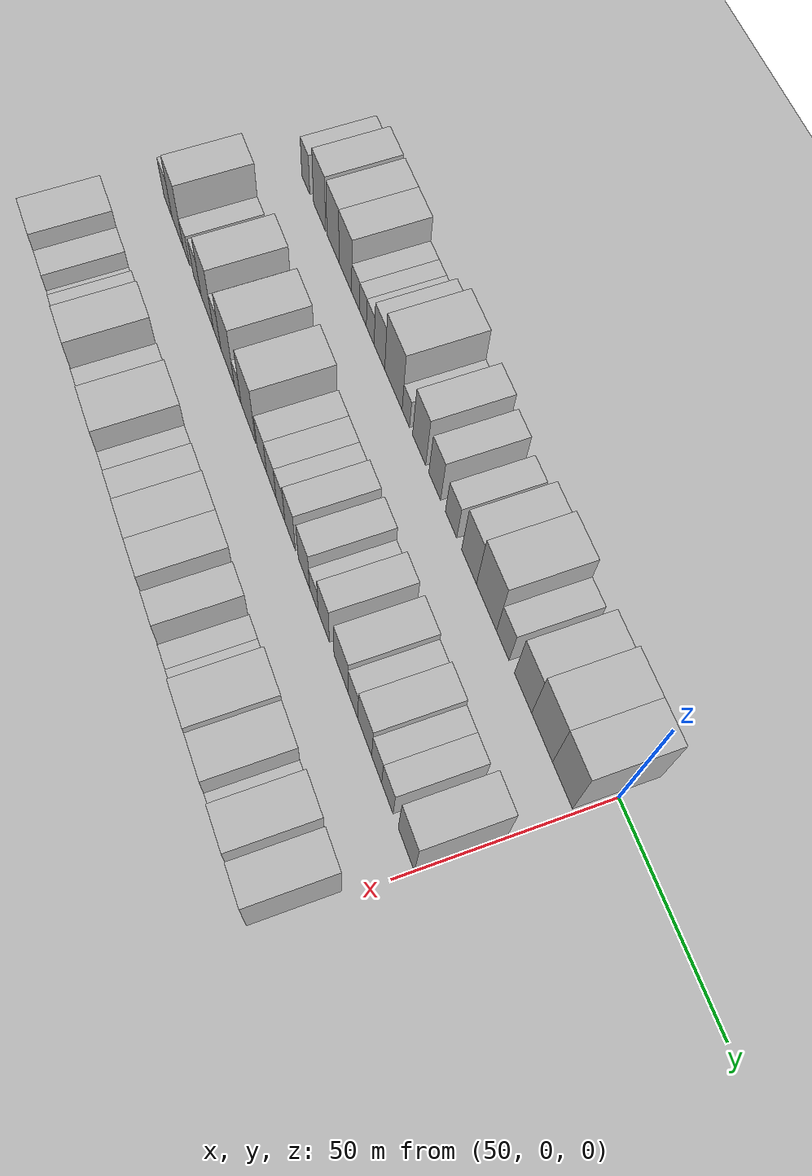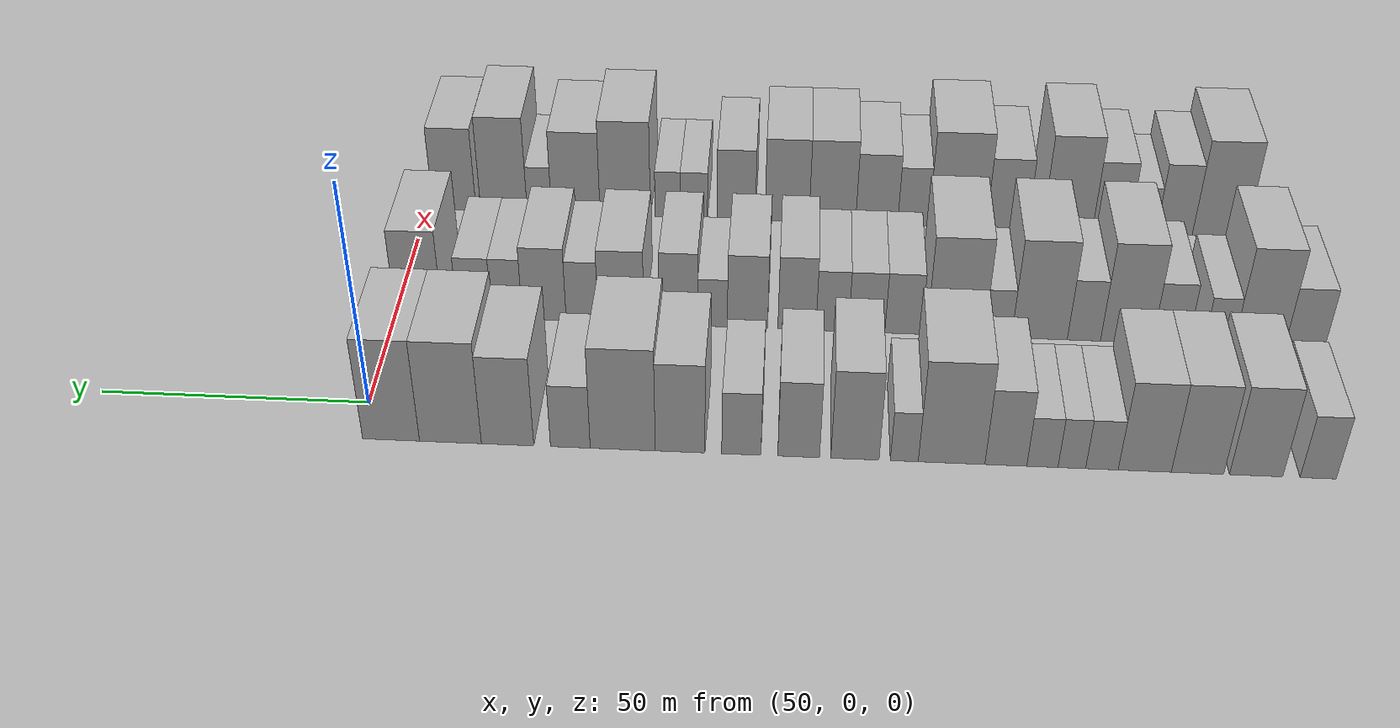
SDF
<sdf version="1.6">
 <world name="default">
  <include><name>ground_plane_1</name><uri>model://HANNAS_ground_plane</uri></include>
  <include>
   <name>ground_plane_2</name>
   <uri>model://HANNAS_ground_plane</uri>
   <pose>100 0 0  0 0 0</pose>
  </include>
  <model name="building_21">
   <static>1</static>
   <pose>50.0000 -170.3118 0 0.000000 0.000000 0.000000</pose>
   <link name="link">
    <pose>0 0 7.50 0 0 0</pose>
    <collision name="collision"><geometry><box><size>20.0000 6.2473 15.0000</size></box></geometry></collision>
    <visual name="visual">
     <cast_shadows>0</cast_shadows>
     <geometry><box><size>20.0000 6.2473 15.0000</size></box></geometry>
     <material>
      <script>
       <uri>model://HANNAS_wall/materials/scripts</uri>
       <uri>model://HANNAS_wall/materials/textures</uri>
       <name>vrc/HANNAS_wall</name>
      </script>
     </material>
    </visual>
   </link>
  </model>
  <model name="building_22">
   <static>1</static>
   <pose>50.0000 -159.5734 0 0.000000 0.000000 0.000000</pose>
   <link name="link">
    <pose>0 0 10.50 0 0 0</pose>
    <collision name="collision"><geometry><box><size>20.0000 9.2295 21.0000</size></box></geometry></collision>
    <visual name="visual">
     <cast_shadows>0</cast_shadows>
     <geometry><box><size>20.0000 9.2295 21.0000</size></box></geometry>
     <material>
      <script>
       <uri>model://HANNAS_wall/materials/scripts</uri>
       <uri>model://HANNAS_wall/materials/textures</uri>
       <name>vrc/HANNAS_wall</name>
      </script>
     </material>
    </visual>
   </link>
  </model>
  <model name="building_23">
   <static>1</static>
   <pose>50.0000 -149.4023 0 0.000000 0.000000 0.000000</pose>
   <link name="link">
    <pose>0 0 10.50 0 0 0</pose>
    <collision name="collision"><geometry><box><size>20.0000 9.1128 21.0000</size></box></geometry></collision>
    <visual name="visual">
     <cast_shadows>0</cast_shadows>
     <geometry><box><size>20.0000 9.1128 21.0000</size></box></geometry>
     <material>
      <script>
       <uri>model://HANNAS_wall/materials/scripts</uri>
       <uri>model://HANNAS_wall/materials/textures</uri>
       <name>vrc/HANNAS_wall</name>
      </script>
     </material>
    </visual>
   </link>
  </model>
  <model name="building_24">
   <static>1</static>
   <pose>50.0000 -140.2071 0 0.000000 0.000000 0.000000</pose>
   <link name="link">
    <pose>0 0 10.50 0 0 0</pose>
    <collision name="collision"><geometry><box><size>20.0000 9.2776 21.0000</size></box></geometry></collision>
    <visual name="visual">
     <cast_shadows>0</cast_shadows>
     <geometry><box><size>20.0000 9.2776 21.0000</size></box></geometry>
     <material>
      <script>
       <uri>model://HANNAS_wall/materials/scripts</uri>
       <uri>model://HANNAS_wall/materials/textures</uri>
       <name>vrc/HANNAS_wall</name>
      </script>
     </material>
    </visual>
   </link>
  </model>
  <model name="building_25">
   <static>1</static>
   <pose>50.0000 -132.7250 0 0.000000 0.000000 0.000000</pose>
   <link name="link">
    <pose>0 0 6.00 0 0 0</pose>
    <collision name="collision"><geometry><box><size>20.0000 5.6866 12.0000</size></box></geometry></collision>
    <visual name="visual">
     <cast_shadows>0</cast_shadows>
     <geometry><box><size>20.0000 5.6866 12.0000</size></box></geometry>
     <material>
      <script>
       <uri>model://HANNAS_wall/materials/scripts</uri>
       <uri>model://HANNAS_wall/materials/textures</uri>
       <name>vrc/HANNAS_wall</name>
      </script>
     </material>
    </visual>
   </link>
  </model>
  <model name="building_26">
   <static>1</static>
   <pose>50.0000 -127.4625 0 0.000000 0.000000 0.000000</pose>
   <link name="link">
    <pose>0 0 6.00 0 0 0</pose>
    <collision name="collision"><geometry><box><size>20.0000 4.8385 12.0000</size></box></geometry></collision>
    <visual name="visual">
     <cast_shadows>0</cast_shadows>
     <geometry><box><size>20.0000 4.8385 12.0000</size></box></geometry>
     <material>
      <script>
       <uri>model://HANNAS_wall/materials/scripts</uri>
       <uri>model://HANNAS_wall/materials/textures</uri>
       <name>vrc/HANNAS_wall</name>
      </script>
     </material>
    </visual>
   </link>
  </model>
  <model name="building_27">
   <static>1</static>
   <pose>50.0000 -122.3108 0 0.000000 0.000000 0.000000</pose>
   <link name="link">
    <pose>0 0 6.00 0 0 0</pose>
    <collision name="collision"><geometry><box><size>20.0000 5.4649 12.0000</size></box></geometry></collision>
    <visual name="visual">
     <cast_shadows>0</cast_shadows>
     <geometry><box><size>20.0000 5.4649 12.0000</size></box></geometry>
     <material>
      <script>
       <uri>model://HANNAS_wall/materials/scripts</uri>
       <uri>model://HANNAS_wall/materials/textures</uri>
       <name>vrc/HANNAS_wall</name>
      </script>
     </material>
    </visual>
   </link>
  </model>
  <model name="building_28">
   <static>1</static>
   <pose>50.0000 -115.8985 0 0.000000 0.000000 0.000000</pose>
   <link name="link">
    <pose>0 0 9.00 0 0 0</pose>
    <collision name="collision"><geometry><box><size>20.0000 7.3597 18.0000</size></box></geometry></collision>
    <visual name="visual">
     <cast_shadows>0</cast_shadows>
     <geometry><box><size>20.0000 7.3597 18.0000</size></box></geometry>
     <material>
      <script>
       <uri>model://HANNAS_wall/materials/scripts</uri>
       <uri>model://HANNAS_wall/materials/textures</uri>
       <name>vrc/HANNAS_wall</name>
      </script>
     </material>
    </visual>
   </link>
  </model>
  <model name="building_29">
   <static>1</static>
   <pose>50.0000 -106.3487 0 0.000000 0.000000 0.000000</pose>
   <link name="link">
    <pose>0 0 12.00 0 0 0</pose>
    <collision name="collision"><geometry><box><size>20.0000 11.7398 24.0000</size></box></geometry></collision>
    <visual name="visual">
     <cast_shadows>0</cast_shadows>
     <geometry><box><size>20.0000 11.7398 24.0000</size></box></geometry>
     <material>
      <script>
       <uri>model://HANNAS_wall/materials/scripts</uri>
       <uri>model://HANNAS_wall/materials/textures</uri>
       <name>vrc/HANNAS_wall</name>
      </script>
     </material>
    </visual>
   </link>
  </model>
  <model name="building_30">
   <static>1</static>
   <pose>50.0000 -98.0165 0 0.000000 0.000000 0.000000</pose>
   <link name="link">
    <pose>0 0 6.00 0 0 0</pose>
    <collision name="collision"><geometry><box><size>20.0000 4.9245 12.0000</size></box></geometry></collision>
    <visual name="visual">
     <cast_shadows>0</cast_shadows>
     <geometry><box><size>20.0000 4.9245 12.0000</size></box></geometry>
     <material>
      <script>
       <uri>model://HANNAS_wall/materials/scripts</uri>
       <uri>model://HANNAS_wall/materials/textures</uri>
       <name>vrc/HANNAS_wall</name>
      </script>
     </material>
    </visual>
   </link>
  </model>
  <model name="building_31">
   <static>1</static>
   <pose>50.0000 -89.2858 0 0.000000 0.000000 0.000000</pose>
   <link name="link">
    <pose>0 0 10.50 0 0 0</pose>
    <collision name="collision"><geometry><box><size>20.0000 8.5370 21.0000</size></box></geometry></collision>
    <visual name="visual">
     <cast_shadows>0</cast_shadows>
     <geometry><box><size>20.0000 8.5370 21.0000</size></box></geometry>
     <material>
      <script>
       <uri>model://HANNAS_wall/materials/scripts</uri>
       <uri>model://HANNAS_wall/materials/textures</uri>
       <name>vrc/HANNAS_wall</name>
      </script>
     </material>
    </visual>
   </link>
  </model>
  <model name="building_32">
   <static>1</static>
   <pose>50.0000 -79.3101 0 0.000000 0.000000 0.000000</pose>
   <link name="link">
    <pose>0 0 9.00 0 0 0</pose>
    <collision name="collision"><geometry><box><size>20.0000 7.4142 18.0000</size></box></geometry></collision>
    <visual name="visual">
     <cast_shadows>0</cast_shadows>
     <geometry><box><size>20.0000 7.4142 18.0000</size></box></geometry>
     <material>
      <script>
       <uri>model://HANNAS_wall/materials/scripts</uri>
       <uri>model://HANNAS_wall/materials/textures</uri>
       <name>vrc/HANNAS_wall</name>
      </script>
     </material>
    </visual>
   </link>
  </model>
  <model name="building_33">
   <static>1</static>
   <pose>50.0000 -69.1158 0 0.000000 0.000000 0.000000</pose>
   <link name="link">
    <pose>0 0 7.50 0 0 0</pose>
    <collision name="collision"><geometry><box><size>20.0000 6.9746 15.0000</size></box></geometry></collision>
    <visual name="visual">
     <cast_shadows>0</cast_shadows>
     <geometry><box><size>20.0000 6.9746 15.0000</size></box></geometry>
     <material>
      <script>
       <uri>model://HANNAS_wall/materials/scripts</uri>
       <uri>model://HANNAS_wall/materials/textures</uri>
       <name>vrc/HANNAS_wall</name>
      </script>
     </material>
    </visual>
   </link>
  </model>
  <model name="building_34">
   <static>1</static>
   <pose>50.0000 -58.2032 0 0.000000 0.000000 0.000000</pose>
   <link name="link">
    <pose>0 0 10.50 0 0 0</pose>
    <collision name="collision"><geometry><box><size>20.0000 8.8505 21.0000</size></box></geometry></collision>
    <visual name="visual">
     <cast_shadows>0</cast_shadows>
     <geometry><box><size>20.0000 8.8505 21.0000</size></box></geometry>
     <material>
      <script>
       <uri>model://HANNAS_wall/materials/scripts</uri>
       <uri>model://HANNAS_wall/materials/textures</uri>
       <name>vrc/HANNAS_wall</name>
      </script>
     </material>
    </visual>
   </link>
  </model>
  <model name="building_35">
   <static>1</static>
   <pose>50.0000 -47.9410 0 0.000000 0.000000 0.000000</pose>
   <link name="link">
    <pose>0 0 12.00 0 0 0</pose>
    <collision name="collision"><geometry><box><size>20.0000 11.6740 24.0000</size></box></geometry></collision>
    <visual name="visual">
     <cast_shadows>0</cast_shadows>
     <geometry><box><size>20.0000 11.6740 24.0000</size></box></geometry>
     <material>
      <script>
       <uri>model://HANNAS_wall/materials/scripts</uri>
       <uri>model://HANNAS_wall/materials/textures</uri>
       <name>vrc/HANNAS_wall</name>
      </script>
     </material>
    </visual>
   </link>
  </model>
  <model name="building_36">
   <static>1</static>
   <pose>50.0000 -38.5350 0 0.000000 0.000000 0.000000</pose>
   <link name="link">
    <pose>0 0 7.50 0 0 0</pose>
    <collision name="collision"><geometry><box><size>20.0000 7.1380 15.0000</size></box></geometry></collision>
    <visual name="visual">
     <cast_shadows>0</cast_shadows>
     <geometry><box><size>20.0000 7.1380 15.0000</size></box></geometry>
     <material>
      <script>
       <uri>model://HANNAS_wall/materials/scripts</uri>
       <uri>model://HANNAS_wall/materials/textures</uri>
       <name>vrc/HANNAS_wall</name>
      </script>
     </material>
    </visual>
   </link>
  </model>
  <model name="building_37">
   <static>1</static>
   <pose>50.0000 -27.2433 0 0.000000 0.000000 0.000000</pose>
   <link name="link">
    <pose>0 0 10.50 0 0 0</pose>
    <collision name="collision"><geometry><box><size>20.0000 9.4455 21.0000</size></box></geometry></collision>
    <visual name="visual">
     <cast_shadows>0</cast_shadows>
     <geometry><box><size>20.0000 9.4455 21.0000</size></box></geometry>
     <material>
      <script>
       <uri>model://HANNAS_wall/materials/scripts</uri>
       <uri>model://HANNAS_wall/materials/textures</uri>
       <name>vrc/HANNAS_wall</name>
      </script>
     </material>
    </visual>
   </link>
  </model>
  <model name="building_38">
   <static>1</static>
   <pose>50.0000 -16.9282 0 0.000000 0.000000 0.000000</pose>
   <link name="link">
    <pose>0 0 12.00 0 0 0</pose>
    <collision name="collision"><geometry><box><size>20.0000 11.1846 24.0000</size></box></geometry></collision>
    <visual name="visual">
     <cast_shadows>0</cast_shadows>
     <geometry><box><size>20.0000 11.1846 24.0000</size></box></geometry>
     <material>
      <script>
       <uri>model://HANNAS_wall/materials/scripts</uri>
       <uri>model://HANNAS_wall/materials/textures</uri>
       <name>vrc/HANNAS_wall</name>
      </script>
     </material>
    </visual>
   </link>
  </model>
  <model name="building_39">
   <static>1</static>
   <pose>50.0000 -6.1731 0 0.000000 0.000000 0.000000</pose>
   <link name="link">
    <pose>0 0 12.00 0 0 0</pose>
    <collision name="collision"><geometry><box><size>20.0000 10.3255 24.0000</size></box></geometry></collision>
    <visual name="visual">
     <cast_shadows>0</cast_shadows>
     <geometry><box><size>20.0000 10.3255 24.0000</size></box></geometry>
     <material>
      <script>
       <uri>model://HANNAS_wall/materials/scripts</uri>
       <uri>model://HANNAS_wall/materials/textures</uri>
       <name>vrc/HANNAS_wall</name>
      </script>
     </material>
    </visual>
   </link>
  </model>
  <model name="building_95">
   <static>1</static>
   <pose>85.0000 -175.2722 0 0.000000 0.000000 0.000000</pose>
   <link name="link">
    <pose>0 0 7.50 0 0 0</pose>
    <collision name="collision"><geometry><box><size>20.0000 7.4851 15.0000</size></box></geometry></collision>
    <visual name="visual">
     <cast_shadows>0</cast_shadows>
     <geometry><box><size>20.0000 7.4851 15.0000</size></box></geometry>
     <material>
      <script>
       <uri>model://HANNAS_wall/materials/scripts</uri>
       <uri>model://HANNAS_wall/materials/textures</uri>
       <name>vrc/HANNAS_wall</name>
      </script>
     </material>
    </visual>
   </link>
  </model>
  <model name="building_96">
   <static>1</static>
   <pose>85.0000 -166.7127 0 0.000000 0.000000 0.000000</pose>
   <link name="link">
    <pose>0 0 12.00 0 0 0</pose>
    <collision name="collision"><geometry><box><size>20.0000 9.6341 24.0000</size></box></geometry></collision>
    <visual name="visual">
     <cast_shadows>0</cast_shadows>
     <geometry><box><size>20.0000 9.6341 24.0000</size></box></geometry>
     <material>
      <script>
       <uri>model://HANNAS_wall/materials/scripts</uri>
       <uri>model://HANNAS_wall/materials/textures</uri>
       <name>vrc/HANNAS_wall</name>
      </script>
     </material>
    </visual>
   </link>
  </model>
  <model name="building_97">
   <static>1</static>
   <pose>85.0000 -159.0897 0 0.000000 0.000000 0.000000</pose>
   <link name="link">
    <pose>0 0 6.00 0 0 0</pose>
    <collision name="collision"><geometry><box><size>20.0000 5.6119 12.0000</size></box></geometry></collision>
    <visual name="visual">
     <cast_shadows>0</cast_shadows>
     <geometry><box><size>20.0000 5.6119 12.0000</size></box></geometry>
     <material>
      <script>
       <uri>model://HANNAS_wall/materials/scripts</uri>
       <uri>model://HANNAS_wall/materials/textures</uri>
       <name>vrc/HANNAS_wall</name>
      </script>
     </material>
    </visual>
   </link>
  </model>
  <model name="building_98">
   <static>1</static>
   <pose>85.0000 -149.9113 0 0.000000 0.000000 0.000000</pose>
   <link name="link">
    <pose>0 0 7.50 0 0 0</pose>
    <collision name="collision"><geometry><box><size>20.0000 6.7449 15.0000</size></box></geometry></collision>
    <visual name="visual">
     <cast_shadows>0</cast_shadows>
     <geometry><box><size>20.0000 6.7449 15.0000</size></box></geometry>
     <material>
      <script>
       <uri>model://HANNAS_wall/materials/scripts</uri>
       <uri>model://HANNAS_wall/materials/textures</uri>
       <name>vrc/HANNAS_wall</name>
      </script>
     </material>
    </visual>
   </link>
  </model>
  <model name="building_99">
   <static>1</static>
   <pose>85.0000 -141.6126 0 0.000000 0.000000 0.000000</pose>
   <link name="link">
    <pose>0 0 12.00 0 0 0</pose>
    <collision name="collision"><geometry><box><size>20.0000 9.8526 24.0000</size></box></geometry></collision>
    <visual name="visual">
     <cast_shadows>0</cast_shadows>
     <geometry><box><size>20.0000 9.8526 24.0000</size></box></geometry>
     <material>
      <script>
       <uri>model://HANNAS_wall/materials/scripts</uri>
       <uri>model://HANNAS_wall/materials/textures</uri>
       <name>vrc/HANNAS_wall</name>
      </script>
     </material>
    </visual>
   </link>
  </model>
  <model name="building_100">
   <static>1</static>
   <pose>85.0000 -133.5320 0 0.000000 0.000000 0.000000</pose>
   <link name="link">
    <pose>0 0 7.50 0 0 0</pose>
    <collision name="collision"><geometry><box><size>20.0000 6.3085 15.0000</size></box></geometry></collision>
    <visual name="visual">
     <cast_shadows>0</cast_shadows>
     <geometry><box><size>20.0000 6.3085 15.0000</size></box></geometry>
     <material>
      <script>
       <uri>model://HANNAS_wall/materials/scripts</uri>
       <uri>model://HANNAS_wall/materials/textures</uri>
       <name>vrc/HANNAS_wall</name>
      </script>
     </material>
    </visual>
   </link>
  </model>
  <model name="building_101">
   <static>1</static>
   <pose>85.0000 -125.0605 0 0.000000 0.000000 0.000000</pose>
   <link name="link">
    <pose>0 0 12.00 0 0 0</pose>
    <collision name="collision"><geometry><box><size>20.0000 10.6345 24.0000</size></box></geometry></collision>
    <visual name="visual">
     <cast_shadows>0</cast_shadows>
     <geometry><box><size>20.0000 10.6345 24.0000</size></box></geometry>
     <material>
      <script>
       <uri>model://HANNAS_wall/materials/scripts</uri>
       <uri>model://HANNAS_wall/materials/textures</uri>
       <name>vrc/HANNAS_wall</name>
      </script>
     </material>
    </visual>
   </link>
  </model>
  <model name="building_102">
   <static>1</static>
   <pose>85.0000 -117.1557 0 0.000000 0.000000 0.000000</pose>
   <link name="link">
    <pose>0 0 6.00 0 0 0</pose>
    <collision name="collision"><geometry><box><size>20.0000 5.1753 12.0000</size></box></geometry></collision>
    <visual name="visual">
     <cast_shadows>0</cast_shadows>
     <geometry><box><size>20.0000 5.1753 12.0000</size></box></geometry>
     <material>
      <script>
       <uri>model://HANNAS_wall/materials/scripts</uri>
       <uri>model://HANNAS_wall/materials/textures</uri>
       <name>vrc/HANNAS_wall</name>
      </script>
     </material>
    </visual>
   </link>
  </model>
  <model name="building_103">
   <static>1</static>
   <pose>85.0000 -109.0142 0 0.000000 0.000000 0.000000</pose>
   <link name="link">
    <pose>0 0 12.00 0 0 0</pose>
    <collision name="collision"><geometry><box><size>20.0000 11.1077 24.0000</size></box></geometry></collision>
    <visual name="visual">
     <cast_shadows>0</cast_shadows>
     <geometry><box><size>20.0000 11.1077 24.0000</size></box></geometry>
     <material>
      <script>
       <uri>model://HANNAS_wall/materials/scripts</uri>
       <uri>model://HANNAS_wall/materials/textures</uri>
       <name>vrc/HANNAS_wall</name>
      </script>
     </material>
    </visual>
   </link>
  </model>
  <model name="building_104">
   <static>1</static>
   <pose>85.0000 -98.9507 0 0.000000 0.000000 0.000000</pose>
   <link name="link">
    <pose>0 0 7.50 0 0 0</pose>
    <collision name="collision"><geometry><box><size>20.0000 7.0193 15.0000</size></box></geometry></collision>
    <visual name="visual">
     <cast_shadows>0</cast_shadows>
     <geometry><box><size>20.0000 7.0193 15.0000</size></box></geometry>
     <material>
      <script>
       <uri>model://HANNAS_wall/materials/scripts</uri>
       <uri>model://HANNAS_wall/materials/textures</uri>
       <name>vrc/HANNAS_wall</name>
      </script>
     </material>
    </visual>
   </link>
  </model>
  <model name="building_105">
   <static>1</static>
   <pose>85.0000 -91.9428 0 0.000000 0.000000 0.000000</pose>
   <link name="link">
    <pose>0 0 7.50 0 0 0</pose>
    <collision name="collision"><geometry><box><size>20.0000 6.9965 15.0000</size></box></geometry></collision>
    <visual name="visual">
     <cast_shadows>0</cast_shadows>
     <geometry><box><size>20.0000 6.9965 15.0000</size></box></geometry>
     <material>
      <script>
       <uri>model://HANNAS_wall/materials/scripts</uri>
       <uri>model://HANNAS_wall/materials/textures</uri>
       <name>vrc/HANNAS_wall</name>
      </script>
     </material>
    </visual>
   </link>
  </model>
  <model name="building_106">
   <static>1</static>
   <pose>85.0000 -85.3029 0 0.000000 0.000000 0.000000</pose>
   <link name="link">
    <pose>0 0 7.50 0 0 0</pose>
    <collision name="collision"><geometry><box><size>20.0000 6.2833 15.0000</size></box></geometry></collision>
    <visual name="visual">
     <cast_shadows>0</cast_shadows>
     <geometry><box><size>20.0000 6.2833 15.0000</size></box></geometry>
     <material>
      <script>
       <uri>model://HANNAS_wall/materials/scripts</uri>
       <uri>model://HANNAS_wall/materials/textures</uri>
       <name>vrc/HANNAS_wall</name>
      </script>
     </material>
    </visual>
   </link>
  </model>
  <model name="building_107">
   <static>1</static>
   <pose>85.0000 -78.4829 0 0.000000 0.000000 0.000000</pose>
   <link name="link">
    <pose>0 0 9.00 0 0 0</pose>
    <collision name="collision"><geometry><box><size>20.0000 7.3567 18.0000</size></box></geometry></collision>
    <visual name="visual">
     <cast_shadows>0</cast_shadows>
     <geometry><box><size>20.0000 7.3567 18.0000</size></box></geometry>
     <material>
      <script>
       <uri>model://HANNAS_wall/materials/scripts</uri>
       <uri>model://HANNAS_wall/materials/textures</uri>
       <name>vrc/HANNAS_wall</name>
      </script>
     </material>
    </visual>
   </link>
  </model>
  <model name="building_108">
   <static>1</static>
   <pose>85.0000 -68.9088 0 0.000000 0.000000 0.000000</pose>
   <link name="link">
    <pose>0 0 9.00 0 0 0</pose>
    <collision name="collision"><geometry><box><size>20.0000 7.7915 18.0000</size></box></geometry></collision>
    <visual name="visual">
     <cast_shadows>0</cast_shadows>
     <geometry><box><size>20.0000 7.7915 18.0000</size></box></geometry>
     <material>
      <script>
       <uri>model://HANNAS_wall/materials/scripts</uri>
       <uri>model://HANNAS_wall/materials/textures</uri>
       <name>vrc/HANNAS_wall</name>
      </script>
     </material>
    </visual>
   </link>
  </model>
  <model name="building_109">
   <static>1</static>
   <pose>85.0000 -62.1397 0 0.000000 0.000000 0.000000</pose>
   <link name="link">
    <pose>0 0 6.00 0 0 0</pose>
    <collision name="collision"><geometry><box><size>20.0000 5.7467 12.0000</size></box></geometry></collision>
    <visual name="visual">
     <cast_shadows>0</cast_shadows>
     <geometry><box><size>20.0000 5.7467 12.0000</size></box></geometry>
     <material>
      <script>
       <uri>model://HANNAS_wall/materials/scripts</uri>
       <uri>model://HANNAS_wall/materials/textures</uri>
       <name>vrc/HANNAS_wall</name>
      </script>
     </material>
    </visual>
   </link>
  </model>
  <model name="building_110">
   <static>1</static>
   <pose>85.0000 -55.5606 0 0.000000 0.000000 0.000000</pose>
   <link name="link">
    <pose>0 0 9.00 0 0 0</pose>
    <collision name="collision"><geometry><box><size>20.0000 7.4116 18.0000</size></box></geometry></collision>
    <visual name="visual">
     <cast_shadows>0</cast_shadows>
     <geometry><box><size>20.0000 7.4116 18.0000</size></box></geometry>
     <material>
      <script>
       <uri>model://HANNAS_wall/materials/scripts</uri>
       <uri>model://HANNAS_wall/materials/textures</uri>
       <name>vrc/HANNAS_wall</name>
      </script>
     </material>
    </visual>
   </link>
  </model>
  <model name="building_111">
   <static>1</static>
   <pose>85.0000 -44.3681 0 0.000000 0.000000 0.000000</pose>
   <link name="link">
    <pose>0 0 9.00 0 0 0</pose>
    <collision name="collision"><geometry><box><size>20.0000 8.9734 18.0000</size></box></geometry></collision>
    <visual name="visual">
     <cast_shadows>0</cast_shadows>
     <geometry><box><size>20.0000 8.9734 18.0000</size></box></geometry>
     <material>
      <script>
       <uri>model://HANNAS_wall/materials/scripts</uri>
       <uri>model://HANNAS_wall/materials/textures</uri>
       <name>vrc/HANNAS_wall</name>
      </script>
     </material>
    </visual>
   </link>
  </model>
  <model name="building_112">
   <static>1</static>
   <pose>85.0000 -36.7677 0 0.000000 0.000000 0.000000</pose>
   <link name="link">
    <pose>0 0 7.50 0 0 0</pose>
    <collision name="collision"><geometry><box><size>20.0000 6.2274 15.0000</size></box></geometry></collision>
    <visual name="visual">
     <cast_shadows>0</cast_shadows>
     <geometry><box><size>20.0000 6.2274 15.0000</size></box></geometry>
     <material>
      <script>
       <uri>model://HANNAS_wall/materials/scripts</uri>
       <uri>model://HANNAS_wall/materials/textures</uri>
       <name>vrc/HANNAS_wall</name>
      </script>
     </material>
    </visual>
   </link>
  </model>
  <model name="building_113">
   <static>1</static>
   <pose>85.0000 -29.3756 0 0.000000 0.000000 0.000000</pose>
   <link name="link">
    <pose>0 0 9.00 0 0 0</pose>
    <collision name="collision"><geometry><box><size>20.0000 8.5568 18.0000</size></box></geometry></collision>
    <visual name="visual">
     <cast_shadows>0</cast_shadows>
     <geometry><box><size>20.0000 8.5568 18.0000</size></box></geometry>
     <material>
      <script>
       <uri>model://HANNAS_wall/materials/scripts</uri>
       <uri>model://HANNAS_wall/materials/textures</uri>
       <name>vrc/HANNAS_wall</name>
      </script>
     </material>
    </visual>
   </link>
  </model>
  <model name="building_114">
   <static>1</static>
   <pose>85.0000 -22.0956 0 0.000000 0.000000 0.000000</pose>
   <link name="link">
    <pose>0 0 7.50 0 0 0</pose>
    <collision name="collision"><geometry><box><size>20.0000 6.0031 15.0000</size></box></geometry></collision>
    <visual name="visual">
     <cast_shadows>0</cast_shadows>
     <geometry><box><size>20.0000 6.0031 15.0000</size></box></geometry>
     <material>
      <script>
       <uri>model://HANNAS_wall/materials/scripts</uri>
       <uri>model://HANNAS_wall/materials/textures</uri>
       <name>vrc/HANNAS_wall</name>
      </script>
     </material>
    </visual>
   </link>
  </model>
  <model name="building_115">
   <static>1</static>
   <pose>85.0000 -15.7184 0 0.000000 0.000000 0.000000</pose>
   <link name="link">
    <pose>0 0 7.50 0 0 0</pose>
    <collision name="collision"><geometry><box><size>20.0000 6.7514 15.0000</size></box></geometry></collision>
    <visual name="visual">
     <cast_shadows>0</cast_shadows>
     <geometry><box><size>20.0000 6.7514 15.0000</size></box></geometry>
     <material>
      <script>
       <uri>model://HANNAS_wall/materials/scripts</uri>
       <uri>model://HANNAS_wall/materials/textures</uri>
       <name>vrc/HANNAS_wall</name>
      </script>
     </material>
    </visual>
   </link>
  </model>
  <model name="building_116">
   <static>1</static>
   <pose>85.0000 -4.7244 0 0.000000 0.000000 0.000000</pose>
   <link name="link">
    <pose>0 0 10.50 0 0 0</pose>
    <collision name="collision"><geometry><box><size>20.0000 9.2365 21.0000</size></box></geometry></collision>
    <visual name="visual">
     <cast_shadows>0</cast_shadows>
     <geometry><box><size>20.0000 9.2365 21.0000</size></box></geometry>
     <material>
      <script>
       <uri>model://HANNAS_wall/materials/scripts</uri>
       <uri>model://HANNAS_wall/materials/textures</uri>
       <name>vrc/HANNAS_wall</name>
      </script>
     </material>
    </visual>
   </link>
  </model>
  <model name="building_181">
   <static>1</static>
   <pose>120.0000 -165.1879 0 0.000000 0.000000 0.000000</pose>
   <link name="link">
    <pose>0 0 12.00 0 0 0</pose>
    <collision name="collision"><geometry><box><size>20.0000 10.9109 24.0000</size></box></geometry></collision>
    <visual name="visual">
     <cast_shadows>0</cast_shadows>
     <geometry><box><size>20.0000 10.9109 24.0000</size></box></geometry>
     <material>
      <script>
       <uri>model://HANNAS_wall/materials/scripts</uri>
       <uri>model://HANNAS_wall/materials/textures</uri>
       <name>vrc/HANNAS_wall</name>
      </script>
     </material>
    </visual>
   </link>
  </model>
  <model name="building_182">
   <static>1</static>
   <pose>120.0000 -156.0302 0 0.000000 0.000000 0.000000</pose>
   <link name="link">
    <pose>0 0 9.00 0 0 0</pose>
    <collision name="collision"><geometry><box><size>20.0000 7.4045 18.0000</size></box></geometry></collision>
    <visual name="visual">
     <cast_shadows>0</cast_shadows>
     <geometry><box><size>20.0000 7.4045 18.0000</size></box></geometry>
     <material>
      <script>
       <uri>model://HANNAS_wall/materials/scripts</uri>
       <uri>model://HANNAS_wall/materials/textures</uri>
       <name>vrc/HANNAS_wall</name>
      </script>
     </material>
    </visual>
   </link>
  </model>
  <model name="building_183">
   <static>1</static>
   <pose>120.0000 -149.5223 0 0.000000 0.000000 0.000000</pose>
   <link name="link">
    <pose>0 0 6.00 0 0 0</pose>
    <collision name="collision"><geometry><box><size>20.0000 5.6113 12.0000</size></box></geometry></collision>
    <visual name="visual">
     <cast_shadows>0</cast_shadows>
     <geometry><box><size>20.0000 5.6113 12.0000</size></box></geometry>
     <material>
      <script>
       <uri>model://HANNAS_wall/materials/scripts</uri>
       <uri>model://HANNAS_wall/materials/textures</uri>
       <name>vrc/HANNAS_wall</name>
      </script>
     </material>
    </visual>
   </link>
  </model>
  <model name="building_184">
   <static>1</static>
   <pose>120.0000 -142.9620 0 0.000000 0.000000 0.000000</pose>
   <link name="link">
    <pose>0 0 9.00 0 0 0</pose>
    <collision name="collision"><geometry><box><size>20.0000 7.5093 18.0000</size></box></geometry></collision>
    <visual name="visual">
     <cast_shadows>0</cast_shadows>
     <geometry><box><size>20.0000 7.5093 18.0000</size></box></geometry>
     <material>
      <script>
       <uri>model://HANNAS_wall/materials/scripts</uri>
       <uri>model://HANNAS_wall/materials/textures</uri>
       <name>vrc/HANNAS_wall</name>
      </script>
     </material>
    </visual>
   </link>
  </model>
  <model name="building_185">
   <static>1</static>
   <pose>120.0000 -134.0326 0 0.000000 0.000000 0.000000</pose>
   <link name="link">
    <pose>0 0 12.00 0 0 0</pose>
    <collision name="collision"><geometry><box><size>20.0000 10.3497 24.0000</size></box></geometry></collision>
    <visual name="visual">
     <cast_shadows>0</cast_shadows>
     <geometry><box><size>20.0000 10.3497 24.0000</size></box></geometry>
     <material>
      <script>
       <uri>model://HANNAS_wall/materials/scripts</uri>
       <uri>model://HANNAS_wall/materials/textures</uri>
       <name>vrc/HANNAS_wall</name>
      </script>
     </material>
    </visual>
   </link>
  </model>
  <model name="building_186">
   <static>1</static>
   <pose>120.0000 -121.5891 0 0.000000 0.000000 0.000000</pose>
   <link name="link">
    <pose>0 0 9.00 0 0 0</pose>
    <collision name="collision"><geometry><box><size>20.0000 8.5373 18.0000</size></box></geometry></collision>
    <visual name="visual">
     <cast_shadows>0</cast_shadows>
     <geometry><box><size>20.0000 8.5373 18.0000</size></box></geometry>
     <material>
      <script>
       <uri>model://HANNAS_wall/materials/scripts</uri>
       <uri>model://HANNAS_wall/materials/textures</uri>
       <name>vrc/HANNAS_wall</name>
      </script>
     </material>
    </visual>
   </link>
  </model>
  <model name="building_187">
   <static>1</static>
   <pose>120.0000 -111.3511 0 0.000000 0.000000 0.000000</pose>
   <link name="link">
    <pose>0 0 12.00 0 0 0</pose>
    <collision name="collision"><geometry><box><size>20.0000 11.9386 24.0000</size></box></geometry></collision>
    <visual name="visual">
     <cast_shadows>0</cast_shadows>
     <geometry><box><size>20.0000 11.9386 24.0000</size></box></geometry>
     <material>
      <script>
       <uri>model://HANNAS_wall/materials/scripts</uri>
       <uri>model://HANNAS_wall/materials/textures</uri>
       <name>vrc/HANNAS_wall</name>
      </script>
     </material>
    </visual>
   </link>
  </model>
  <model name="building_188">
   <static>1</static>
   <pose>120.0000 -102.1616 0 0.000000 0.000000 0.000000</pose>
   <link name="link">
    <pose>0 0 7.50 0 0 0</pose>
    <collision name="collision"><geometry><box><size>20.0000 6.4404 15.0000</size></box></geometry></collision>
    <visual name="visual">
     <cast_shadows>0</cast_shadows>
     <geometry><box><size>20.0000 6.4404 15.0000</size></box></geometry>
     <material>
      <script>
       <uri>model://HANNAS_wall/materials/scripts</uri>
       <uri>model://HANNAS_wall/materials/textures</uri>
       <name>vrc/HANNAS_wall</name>
      </script>
     </material>
    </visual>
   </link>
  </model>
  <model name="building_189">
   <static>1</static>
   <pose>120.0000 -94.5759 0 0.000000 0.000000 0.000000</pose>
   <link name="link">
    <pose>0 0 9.00 0 0 0</pose>
    <collision name="collision"><geometry><box><size>20.0000 8.7311 18.0000</size></box></geometry></collision>
    <visual name="visual">
     <cast_shadows>0</cast_shadows>
     <geometry><box><size>20.0000 8.7311 18.0000</size></box></geometry>
     <material>
      <script>
       <uri>model://HANNAS_wall/materials/scripts</uri>
       <uri>model://HANNAS_wall/materials/textures</uri>
       <name>vrc/HANNAS_wall</name>
      </script>
     </material>
    </visual>
   </link>
  </model>
  <model name="building_190">
   <static>1</static>
   <pose>120.0000 -85.3531 0 0.000000 0.000000 0.000000</pose>
   <link name="link">
    <pose>0 0 10.50 0 0 0</pose>
    <collision name="collision"><geometry><box><size>20.0000 9.7145 21.0000</size></box></geometry></collision>
    <visual name="visual">
     <cast_shadows>0</cast_shadows>
     <geometry><box><size>20.0000 9.7145 21.0000</size></box></geometry>
     <material>
      <script>
       <uri>model://HANNAS_wall/materials/scripts</uri>
       <uri>model://HANNAS_wall/materials/textures</uri>
       <name>vrc/HANNAS_wall</name>
      </script>
     </material>
    </visual>
   </link>
  </model>
  <model name="building_191">
   <static>1</static>
   <pose>120.0000 -75.8938 0 0.000000 0.000000 0.000000</pose>
   <link name="link">
    <pose>0 0 10.50 0 0 0</pose>
    <collision name="collision"><geometry><box><size>20.0000 9.2039 21.0000</size></box></geometry></collision>
    <visual name="visual">
     <cast_shadows>0</cast_shadows>
     <geometry><box><size>20.0000 9.2039 21.0000</size></box></geometry>
     <material>
      <script>
       <uri>model://HANNAS_wall/materials/scripts</uri>
       <uri>model://HANNAS_wall/materials/textures</uri>
       <name>vrc/HANNAS_wall</name>
      </script>
     </material>
    </visual>
   </link>
  </model>
  <model name="building_192">
   <static>1</static>
   <pose>120.0000 -65.2752 0 0.000000 0.000000 0.000000</pose>
   <link name="link">
    <pose>0 0 9.00 0 0 0</pose>
    <collision name="collision"><geometry><box><size>20.0000 8.0334 18.0000</size></box></geometry></collision>
    <visual name="visual">
     <cast_shadows>0</cast_shadows>
     <geometry><box><size>20.0000 8.0334 18.0000</size></box></geometry>
     <material>
      <script>
       <uri>model://HANNAS_wall/materials/scripts</uri>
       <uri>model://HANNAS_wall/materials/textures</uri>
       <name>vrc/HANNAS_wall</name>
      </script>
     </material>
    </visual>
   </link>
  </model>
  <model name="building_193">
   <static>1</static>
   <pose>120.0000 -56.4073 0 0.000000 0.000000 0.000000</pose>
   <link name="link">
    <pose>0 0 6.00 0 0 0</pose>
    <collision name="collision"><geometry><box><size>20.0000 5.7023 12.0000</size></box></geometry></collision>
    <visual name="visual">
     <cast_shadows>0</cast_shadows>
     <geometry><box><size>20.0000 5.7023 12.0000</size></box></geometry>
     <material>
      <script>
       <uri>model://HANNAS_wall/materials/scripts</uri>
       <uri>model://HANNAS_wall/materials/textures</uri>
       <name>vrc/HANNAS_wall</name>
      </script>
     </material>
    </visual>
   </link>
  </model>
  <model name="building_194">
   <static>1</static>
   <pose>120.0000 -50.9137 0 0.000000 0.000000 0.000000</pose>
   <link name="link">
    <pose>0 0 6.00 0 0 0</pose>
    <collision name="collision"><geometry><box><size>20.0000 5.2850 12.0000</size></box></geometry></collision>
    <visual name="visual">
     <cast_shadows>0</cast_shadows>
     <geometry><box><size>20.0000 5.2850 12.0000</size></box></geometry>
     <material>
      <script>
       <uri>model://HANNAS_wall/materials/scripts</uri>
       <uri>model://HANNAS_wall/materials/textures</uri>
       <name>vrc/HANNAS_wall</name>
      </script>
     </material>
    </visual>
   </link>
  </model>
  <model name="building_195">
   <static>1</static>
   <pose>120.0000 -41.9578 0 0.000000 0.000000 0.000000</pose>
   <link name="link">
    <pose>0 0 12.00 0 0 0</pose>
    <collision name="collision"><geometry><box><size>20.0000 10.6268 24.0000</size></box></geometry></collision>
    <visual name="visual">
     <cast_shadows>0</cast_shadows>
     <geometry><box><size>20.0000 10.6268 24.0000</size></box></geometry>
     <material>
      <script>
       <uri>model://HANNAS_wall/materials/scripts</uri>
       <uri>model://HANNAS_wall/materials/textures</uri>
       <name>vrc/HANNAS_wall</name>
      </script>
     </material>
    </visual>
   </link>
  </model>
  <model name="building_196">
   <static>1</static>
   <pose>120.0000 -31.5217 0 0.000000 0.000000 0.000000</pose>
   <link name="link">
    <pose>0 0 10.50 0 0 0</pose>
    <collision name="collision"><geometry><box><size>20.0000 10.2454 21.0000</size></box></geometry></collision>
    <visual name="visual">
     <cast_shadows>0</cast_shadows>
     <geometry><box><size>20.0000 10.2454 21.0000</size></box></geometry>
     <material>
      <script>
       <uri>model://HANNAS_wall/materials/scripts</uri>
       <uri>model://HANNAS_wall/materials/textures</uri>
       <name>vrc/HANNAS_wall</name>
      </script>
     </material>
    </visual>
   </link>
  </model>
  <model name="building_197">
   <static>1</static>
   <pose>120.0000 -23.8231 0 0.000000 0.000000 0.000000</pose>
   <link name="link">
    <pose>0 0 6.00 0 0 0</pose>
    <collision name="collision"><geometry><box><size>20.0000 5.1519 12.0000</size></box></geometry></collision>
    <visual name="visual">
     <cast_shadows>0</cast_shadows>
     <geometry><box><size>20.0000 5.1519 12.0000</size></box></geometry>
     <material>
      <script>
       <uri>model://HANNAS_wall/materials/scripts</uri>
       <uri>model://HANNAS_wall/materials/textures</uri>
       <name>vrc/HANNAS_wall</name>
      </script>
     </material>
    </visual>
   </link>
  </model>
  <model name="building_198">
   <static>1</static>
   <pose>120.0000 -16.3190 0 0.000000 0.000000 0.000000</pose>
   <link name="link">
    <pose>0 0 12.00 0 0 0</pose>
    <collision name="collision"><geometry><box><size>20.0000 9.8562 24.0000</size></box></geometry></collision>
    <visual name="visual">
     <cast_shadows>0</cast_shadows>
     <geometry><box><size>20.0000 9.8562 24.0000</size></box></geometry>
     <material>
      <script>
       <uri>model://HANNAS_wall/materials/scripts</uri>
       <uri>model://HANNAS_wall/materials/textures</uri>
       <name>vrc/HANNAS_wall</name>
      </script>
     </material>
    </visual>
   </link>
  </model>
  <model name="building_199">
   <static>1</static>
   <pose>120.0000 -5.8228 0 0.000000 0.000000 0.000000</pose>
   <link name="link">
    <pose>0 0 10.50 0 0 0</pose>
    <collision name="collision"><geometry><box><size>20.0000 9.1362 21.0000</size></box></geometry></collision>
    <visual name="visual">
     <cast_shadows>0</cast_shadows>
     <geometry><box><size>20.0000 9.1362 21.0000</size></box></geometry>
     <material>
      <script>
       <uri>model://HANNAS_wall/materials/scripts</uri>
       <uri>model://HANNAS_wall/materials/textures</uri>
       <name>vrc/HANNAS_wall</name>
      </script>
     </material>
    </visual>
   </link>
  </model>
 </world>
</sdf>
